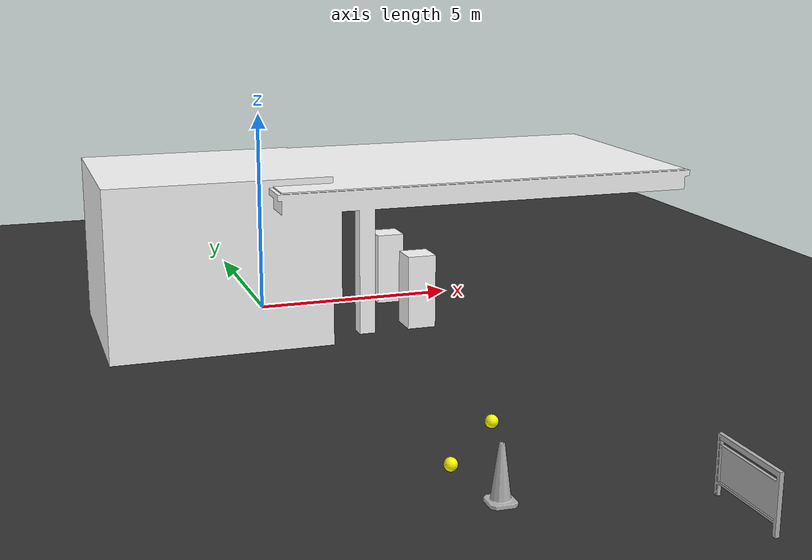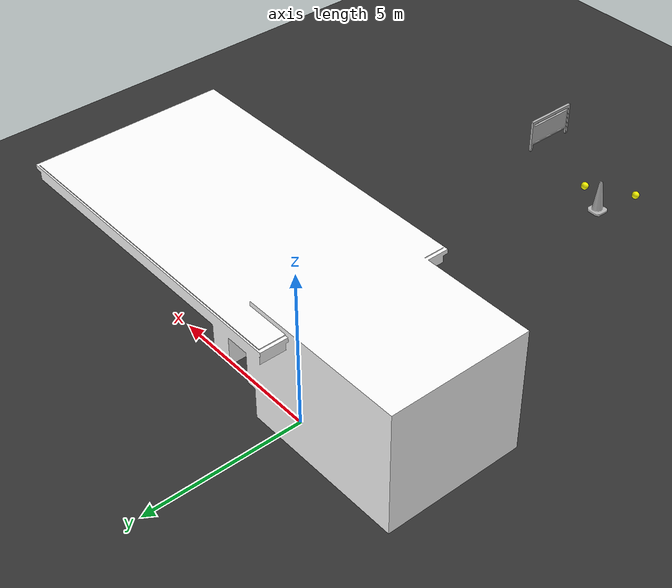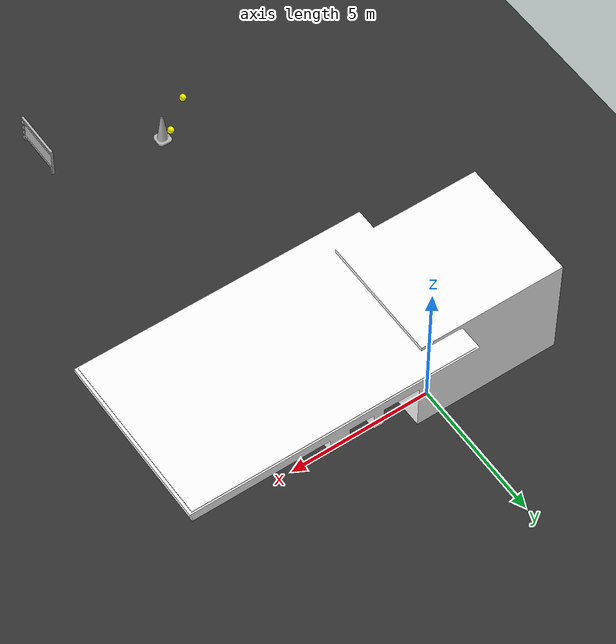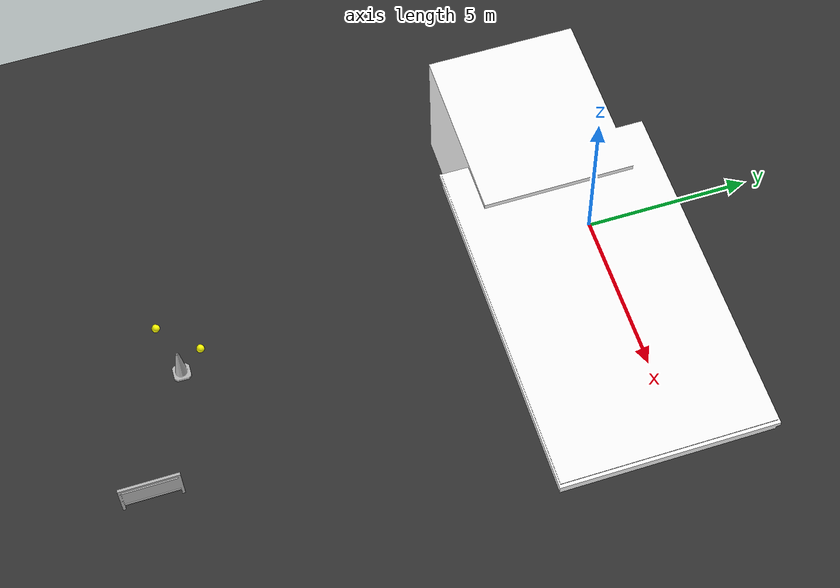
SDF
<sdf version="1.9">
 <world name="refuel_gas_station">
  <physics name="4ms" type="ignored">
   <max_step_size>0.004</max_step_size>
   <real_time_factor>1.0</real_time_factor>
  </physics>
  <plugin filename="gz-sim-physics-system" name="gz::sim::systems::Physics"/>
  <plugin filename="gz-sim-user-commands-system" name="gz::sim::systems::UserCommands"/>
  <plugin filename="gz-sim-scene-broadcaster-system" name="gz::sim::systems::SceneBroadcaster"/>
  <light type="directional" name="sun">
   <cast_shadows>false</cast_shadows>
   <pose>0 0 10 0 0 0</pose>
   <diffuse>0.8 0.8 0.8 1</diffuse>
   <specular>0.2 0.2 0.2 1</specular>
   <direction>-0.5 0.1 -0.9</direction>
  </light>
  <model name="ground_plane">
   <static>true</static>
   <link name="link">
    <collision name="collision"><geometry><plane><normal>0 0 1</normal></plane></geometry></collision>
    <visual name="visual">
     <geometry><plane><normal>0 0 1</normal><size>100 100</size></plane></geometry>
     <material><ambient>0.2 0.2 0.2 1</ambient><diffuse>0.2 0.2 0.2 1</diffuse></material>
    </visual>
   </link>
  </model>
  <include><uri>model://gas_station</uri><name>gas_station</name><pose>2.100 -1.450 0 0 0 0</pose></include>
  <include>
   <uri>model://FoodCourtBarricade</uri>
   <name>barricade</name>
   <pose>4.832 -14.509 0.01 0 0 1.57</pose>
  </include>
  <include>
   <uri>model://construction_cone</uri>
   <name>cone</name>
   <pose>1.1719791889190674 -12.851659774780275 0.0052882102318108082 0 0 -0.026000007134877226</pose>
  </include>
  <model name="dot_dispenser">
   <static>true</static>
   <pose>1.2640416622161865 -12.185000419616699 1.2171000242233276 0 0 0</pose>
   <link name="link">
    <inertial><mass>0.1</mass><inertia><ixx>0.001</ixx><iyy>0.001</iyy><izz>0.001</izz></inertia></inertial>
    <collision name="col"><geometry><sphere><radius>0.12</radius></sphere></geometry></collision>
    <visual name="vis">
     <geometry><sphere><radius>0.12</radius></sphere></geometry>
     <material><ambient>1 1 0 1</ambient><diffuse>1 1 0 1</diffuse></material>
    </visual>
   </link>
  </model>
  <model name="dot_inlet">
   <static>true</static>
   <pose>0.11403899639844894 -13.236710548400879 1.0072900056838989 0 0 0</pose>
   <link name="link">
    <inertial><mass>0.1</mass><inertia><ixx>0.001</ixx><iyy>0.001</iyy><izz>0.001</izz></inertia></inertial>
    <collision name="col"><geometry><sphere><radius>0.12</radius></sphere></geometry></collision>
    <visual name="vis">
     <geometry><sphere><radius>0.12</radius></sphere></geometry>
     <material><ambient>1 1 0 1</ambient><diffuse>1 1 0 1</diffuse></material>
    </visual>
   </link>
  </model>
 </world>
</sdf>

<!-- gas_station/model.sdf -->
<sdf version="1.5">
  <model name="Gas Station">
    <static>true</static>
    <link name="link">
      <pose>0 0 0 0 0 0</pose>
      <collision name="collision">
        <geometry>
          <mesh>
            <uri>model://gas_station/meshes/gas_station.dae</uri>
          </mesh>
        </geometry>
      </collision>
      <visual name="visual">
        <geometry>
          <mesh>
            <uri>model://gas_station/meshes/gas_station.dae</uri>
          </mesh>
        </geometry>
        <material>
          <diffuse>1.0 1.0 1.0 1.0</diffuse>
          <specular>1.0 1.0 1.0 1.0</specular>
          <pbr>
            <metal>
              <albedo_map>model://gas_station/materials/textures/GasStation_Diffuse.png</albedo_map>
              <normal_map>model://gas_station/materials/textures/GasStation_Normal.png</normal_map>
              <metalness_map>model://gas_station/materials/textures/GasStation_Spec.png</metalness_map>
            </metal>
          </pbr>
        </material>
      </visual>
    </link>
  </model>
</sdf>

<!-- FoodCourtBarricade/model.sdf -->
<sdf version="1.6">
  <model name="FoodCourtBarricade">
   <static>true</static>
    <link name="body">
      <pose>0 0 0 0 0 0</pose>

      <visual name="visual">
        <geometry>
          <mesh>
            <uri>model://FoodCourtBarricade/meshes/FoodCourtBarricade.dae</uri>
          </mesh>
        </geometry>
      </visual>

      <collision name="collision">
        <geometry>
          <mesh>
            <uri>model://FoodCourtBarricade/meshes/FoodCourtBarricade_Col.obj</uri>
          </mesh>
        </geometry>
      </collision>

    </link>
  </model>
</sdf>

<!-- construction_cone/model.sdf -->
<sdf version="1.5">
  <model name="Construction Cone">
    <link name="link">
      <collision name="collision">
        <geometry>
          <mesh>
            <scale>10 10 10</scale>
            <uri>file://isr-testbed/construction_cone/meshes/construction_cone.dae</uri>
          </mesh>
        </geometry>
      </collision>
      <visual name="visual">
        <geometry>
          <mesh>
            <scale>10 10 10</scale>
            <uri>file://isr-testbed/construction_cone/meshes/construction_cone.dae</uri>
          </mesh>
        </geometry>
      </visual>
    </link>
  </model>
</sdf>
